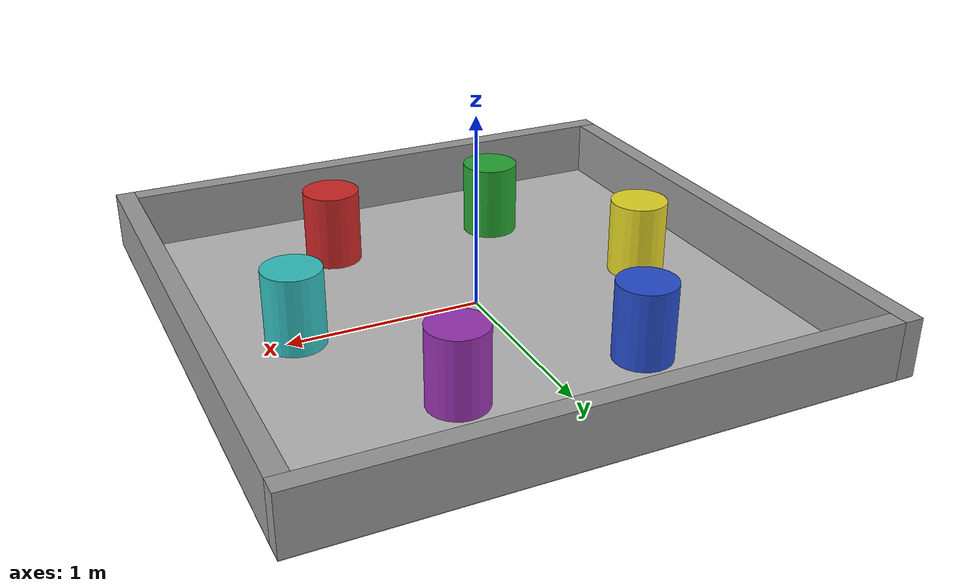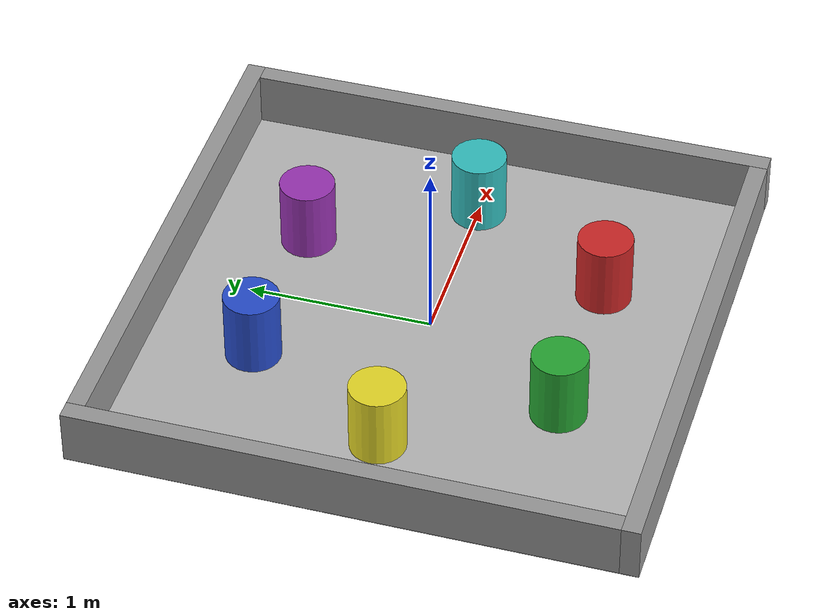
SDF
<sdf version="1.6">
 <world name="default">
  <light name="sun" type="directional">
   <pose>0 0 10 0 -0 0</pose>
   <diffuse>0.8 0.8 0.8 1</diffuse>
   <specular>0.2 0.2 0.2 1</specular>
   <attenuation>
    <range>1000</range>
    <constant>0.9</constant>
    <linear>0.01</linear>
    <quadratic>0.001</quadratic>
   </attenuation>
   <direction>-0.5 0.1 -0.9</direction>
  </light>
  <gravity>0 0 -9.8</gravity>
  <magnetic_field>6e-06 2.3e-05 -4.2e-05</magnetic_field>
  <atmosphere type="adiabatic"/>
  <physics name="default_physics" default="0" type="ode">
   <max_step_size>0.001</max_step_size>
   <real_time_factor>1</real_time_factor>
   <real_time_update_rate>1000</real_time_update_rate>
  </physics>
  <scene><ambient>0.4 0.4 0.4 1</ambient><background>0.7 0.7 0.7 1</background><shadows>1</shadows></scene>
  <spherical_coordinates>
   <surface_model>EARTH_WGS84</surface_model>
   <latitude_deg>0</latitude_deg>
   <longitude_deg>0</longitude_deg>
   <elevation>0</elevation>
   <heading_deg>0</heading_deg>
  </spherical_coordinates>
  <include><uri>model://beacon_colours_floor</uri></include>
  <include><uri>model://small_arena_walls</uri></include>
  <model name="obstacle">
   <pose>0 0 0.2 0 0 0</pose>
   <link name="obstacle">
    <collision name="bcn_turq">
     <pose>0.9527 0 0 0 0 0</pose>
     <geometry><cylinder><radius>0.15</radius><length>0.4</length></cylinder></geometry>
    </collision>
    <visual name="bcn_turq">
     <pose>0.9527 0 0 0 0 0</pose>
     <geometry><cylinder><radius>0.15</radius><length>0.4</length></cylinder></geometry>
     <material>
      <script><uri>file://media/materials/scripts/gazebo.material</uri><name>Gazebo/Turquoise</name></script>
     </material>
    </visual>
    <collision name="bcn_red">
     <pose>0.4764 -0.8251 0 0 0 0</pose>
     <geometry><cylinder><radius>0.15</radius><length>0.4</length></cylinder></geometry>
    </collision>
    <visual name="bcn_red">
     <pose>0.4764 -0.8251 0 0 0 0</pose>
     <geometry><cylinder><radius>0.15</radius><length>0.4</length></cylinder></geometry>
     <material>
      <script><uri>file://media/materials/scripts/gazebo.material</uri><name>Gazebo/Red</name></script>
     </material>
    </visual>
    <collision name="bcn_green">
     <pose>-0.4764 -0.8251 0 0 0 0</pose>
     <geometry><cylinder><radius>0.15</radius><length>0.4</length></cylinder></geometry>
    </collision>
    <visual name="bcn_green">
     <pose>-0.4764 -0.8251 0 0 0 0</pose>
     <geometry><cylinder><radius>0.15</radius><length>0.4</length></cylinder></geometry>
     <material>
      <script><uri>file://media/materials/scripts/gazebo.material</uri><name>Gazebo/Green</name></script>
     </material>
    </visual>
    <collision name="bcn_yellow">
     <pose>-0.9527 0 0 0 0 0</pose>
     <geometry><cylinder><radius>0.15</radius><length>0.4</length></cylinder></geometry>
    </collision>
    <visual name="bcn_yellow">
     <pose>-0.9527 0 0 0 0 0</pose>
     <geometry><cylinder><radius>0.15</radius><length>0.4</length></cylinder></geometry>
     <material>
      <script><uri>file://media/materials/scripts/gazebo.material</uri><name>Gazebo/Yellow</name></script>
     </material>
    </visual>
    <collision name="bcn_blue">
     <pose>-0.4764 0.8251 0 0 0 0</pose>
     <geometry><cylinder><radius>0.15</radius><length>0.4</length></cylinder></geometry>
    </collision>
    <visual name="bcn_blue">
     <pose>-0.4764 0.8251 0 0 0 0</pose>
     <geometry><cylinder><radius>0.15</radius><length>0.4</length></cylinder></geometry>
     <material>
      <script><uri>file://media/materials/scripts/gazebo.material</uri><name>Gazebo/Blue</name></script>
     </material>
    </visual>
    <collision name="bcn_purple">
     <pose>0.4764 0.8251 0 0 0 0</pose>
     <geometry><cylinder><radius>0.15</radius><length>0.4</length></cylinder></geometry>
    </collision>
    <visual name="bcn_purple">
     <pose>0.4764 0.8251 0 0 0 0</pose>
     <geometry><cylinder><radius>0.15</radius><length>0.4</length></cylinder></geometry>
     <material>
      <script><uri>file://media/materials/scripts/gazebo.material</uri><name>Gazebo/Purple</name></script>
     </material>
    </visual>
   </link>
   <static>1</static>
  </model>
 </world>
</sdf>

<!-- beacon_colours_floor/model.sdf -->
<sdf version="1.4">
<model name="beacon_colours_floor">
  <static>true</static>
    <link name="link">
      <collision name="collision">
        <geometry>
          <plane>
            <normal>0 0 1</normal>
            <size>3.0 3.0</size>
          </plane>
        </geometry>
        <surface>
          <friction>
            <ode>
              <mu>100</mu>
              <mu2>50</mu2>
            </ode>
          </friction>
        </surface>
      </collision>
      <visual name="visual">
        <cast_shadows>false</cast_shadows>
        <geometry>
          <plane>
            <normal>0 0 1</normal>
            <size>3.0 3.0</size>
          </plane>
        </geometry>
        <material>
          <script>
            <uri>model://beacon_colours_floor/materials/scripts</uri>
            <uri>model://beacon_colours_floor/materials/textures</uri>
            <name>BeaconColoursFloor/Image</name>
          </script>
        </material>
      </visual>
    </link>
  </model>
</sdf>

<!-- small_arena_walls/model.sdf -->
<sdf version='1.6'>
  <model name='small_arena_walls'>
    <pose frame=''>0 0 0.15 0 0 0</pose>
    <link name='Right_Wall'>
      <collision name='Right_Wall_Collision'>
        <geometry>
          <box>
            <size>2.90 0.10 0.3</size>
          </box>
        </geometry>
        <pose frame=''>0 0 0 0 0 0</pose>
      </collision>
      <visual name='Right_Wall_Visual'>
        <pose frame=''>0 0 0 0 0 0</pose>
        <geometry>
          <box>
            <size>2.90 0.10 0.3</size>
          </box>
        </geometry>
        <material>
          <script>
            <uri>file://media/materials/scripts/gazebo.material</uri>
            <name>Gazebo/Grey</name>
          </script>
          <ambient>1 1 1 1</ambient>
        </material>
      </visual>
      <pose frame=''>0.05 1.45 0 0 0 0</pose>
    </link>
    <link name='Back_Wall'>
      <collision name='Back_Wall_Collision'>
        <geometry>
          <box>
            <size>2.90 0.10 0.3</size>
          </box>
        </geometry>
        <pose frame=''>0 0 0 0 0 0</pose>
      </collision>
      <visual name='Back_Wall_Visual'>
        <pose frame=''>0 0 0 0 0 0</pose>
        <geometry>
          <box>
            <size>2.90 0.10 0.3</size>
          </box>
        </geometry>
        <material>
          <script>
            <uri>file://media/materials/scripts/gazebo.material</uri>
            <name>Gazebo/Grey</name>
          </script>
          <ambient>1 1 1 1</ambient>
        </material>
      </visual>
      <pose frame=''>-1.45 0.05 0 0 0 1.5708</pose>
    </link>
    <link name='Left_Wall'>
      <collision name='Left_Wall_Collision'>
        <geometry>
          <box>
            <size>2.90 0.10 0.3</size>
          </box>
        </geometry>
        <pose frame=''>0 0 0 0 0 0</pose>
      </collision>
      <visual name='Left_Wall_Visual'>
        <pose frame=''>0 0 0 0 0 0</pose>
        <geometry>
          <box>
            <size>2.90 0.10 0.3</size>
          </box>
        </geometry>
        <material>
          <script>
            <uri>file://media/materials/scripts/gazebo.material</uri>
            <name>Gazebo/Grey</name>
          </script>
          <ambient>1 1 1 1</ambient>
        </material>
      </visual>
      <pose frame=''>-0.05 -1.45 0 0 0 0</pose>
    </link>
    <link name='Front_Wall'>
      <collision name='Front_Wall_Collision'>
        <geometry>
          <box>
            <size>2.90 0.10 0.3</size>
          </box>
        </geometry>
        <pose frame=''>0 0 0 0 0 0</pose>
      </collision>
      <visual name='Front_Wall_Visual'>
        <pose frame=''>0 0 0 0 0 0</pose>
        <geometry>
          <box>
            <size>2.90 0.10 0.3</size>
          </box>
        </geometry>
        <material>
          <script>
            <uri>file://media/materials/scripts/gazebo.material</uri>
            <name>Gazebo/Grey</name>
          </script>
          <ambient>1 1 1 1</ambient>
        </material>
      </visual>
      <pose frame=''>1.45 -0.05 0 0 0 1.5708</pose>
    </link>
    <static>1</static>
  </model>
</sdf>
